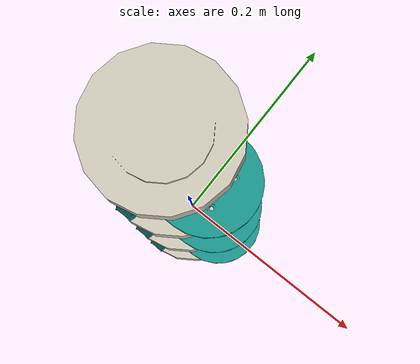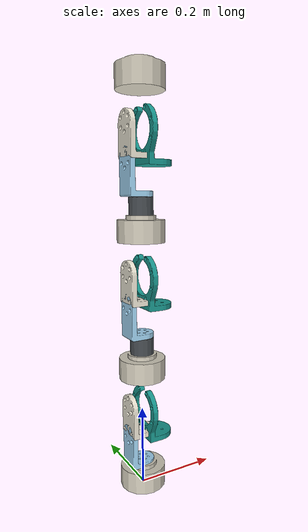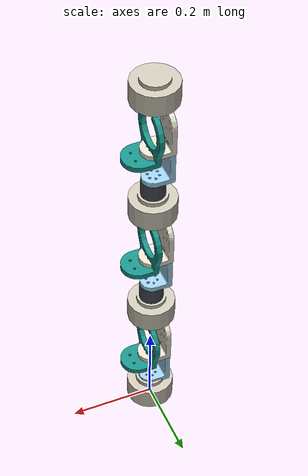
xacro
<?xml version="1.0"?>
<robot xmlns:xacro="http://www.ros.org/wiki/xacro" name="simple_assembly">

    <!-- Import simple_assembly urdf file -->
    <xacro:include filename="$(find simple_assembly)/urdf/simple_assembly.urdf" />

    <!-- Import control_xacro -->
    <xacro:include filename="simple_assembly.ros2_control.xacro" />

    <xacro:arg name="calibrate_on_start" default="false"/>
    <xacro:arg name="zero_offsets_file" default="/home/terralabscove/.ros/damiao_zero_offsets.yaml"/>

    <xacro:simple_assembly_ros2_control
        name="DamiaoArm"
        calibrate_on_start="$(arg calibrate_on_start)"
        zero_offsets_file="$(arg zero_offsets_file)"/>

</robot>

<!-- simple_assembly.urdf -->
<!--URDF generated by ONSHAPE BY PTC INC, 1.213-->
<robot name="simple_assembly">
    <link name="part_1">
        <inertial>
            <mass value="0.392289" />
            <origin xyz="-7.19431e-18 2.31112e-33 0.02825" rpy="0 -0 0" />
            <inertia ixx="0.000184016" ixy="0" ixz="0" iyy="0.000184016" iyz="0" izz="0.000159318" />
        </inertial>
        <visual>
            <origin xyz="-5.31105e-18 -1.74512e-18 0" rpy="0 -0 0" />
            <geometry>
                <mesh filename="package://simple_assembly/meshes/Part 1.stl" scale="1 1 1" />
            </geometry>
            <material name="0.800000_0.776471_0.713725_0.000000_0.000000">
                <texture />
                <color rgba="0.8 0.776471 0.713726 1" />
            </material>
        </visual>
    </link>
    <link name="part_1_1">
        <inertial>
            <mass value="0.347331" />
            <origin xyz="0.020796 1.20964e-08 -0.0428943" rpy="0 -0 0" />
            <inertia ixx="0.000768882" ixy="-1.68717e-10" ixz="0.000128098" iyy="0.00060734" iyz="8.33311e-11" izz="0.000443472" />
        </inertial>
        <visual>
            <origin xyz="1.47451e-17 5.86445e-18 -0.06225" rpy="0 -0 0" />
            <geometry>
                <mesh filename="package://simple_assembly/meshes/Part 1_1.stl" scale="1 1 1" />
            </geometry>
            <material name="0.094118_0.580392_0.545098_0.000000_0.000000">
                <texture />
                <color rgba="0.0941176 0.580392 0.545098 1" />
            </material>
        </visual>
    </link>
    <link name="part_1_10">
        <inertial>
            <mass value="0.347331" />
            <origin xyz="0.020796 1.20964e-08 -0.0428943" rpy="0 -0 0" />
            <inertia ixx="0.000768882" ixy="-1.68717e-10" ixz="0.000128098" iyy="0.00060734" iyz="8.33311e-11" izz="0.000443472" />
        </inertial>
        <visual>
            <origin xyz="1.47451e-17 5.86445e-18 -0.06225" rpy="0 -0 0" />
            <geometry>
                <mesh filename="package://simple_assembly/meshes/Part 1_1.stl" scale="1 1 1" />
            </geometry>
            <material name="0.094118_0.580392_0.545098_0.000000_0.000000">
                <texture />
                <color rgba="0.0941176 0.580392 0.545098 1" />
            </material>
        </visual>
    </link>
    <link name="part_1_11">
        <inertial>
            <mass value="0.284011" />
            <origin xyz="-0.0234111 -2.25131e-10 0.0361492" rpy="0 -0 0" />
            <inertia ixx="0.000368023" ixy="4.4845e-12" ixz="8.61899e-05" iyy="0.000382149" iyz="-7.95148e-12" izz="0.000153368" />
        </inertial>
        <visual>
            <origin xyz="0 0 -0.0002" rpy="0 -0 0" />
            <geometry>
                <mesh filename="package://simple_assembly/meshes/Part 1_3.stl" scale="1 1 1" />
            </geometry>
            <material name="0.615686_0.811765_0.929412_0.000000_0.000000">
                <texture />
                <color rgba="0.615686 0.811765 0.929412 1" />
            </material>
        </visual>
    </link>
    <link name="part_1_12">
        <inertial>
            <mass value="0.392289" />
            <origin xyz="-1.88325e-18 2.31112e-33 0.02825" rpy="0 -0 0" />
            <inertia ixx="0.000184016" ixy="0" ixz="0" iyy="0.000184016" iyz="0" izz="0.000159318" />
        </inertial>
        <visual>
            <origin xyz="0 -1.74512e-18 0" rpy="0 -0 0" />
            <geometry>
                <mesh filename="package://simple_assembly/meshes/Part 1.stl" scale="1 1 1" />
            </geometry>
            <material name="0.800000_0.776471_0.713725_0.000000_0.000000">
                <texture />
                <color rgba="0.8 0.776471 0.713726 1" />
            </material>
        </visual>
    </link>
    <link name="part_1_13">
        <inertial>
            <mass value="0.284011" />
            <origin xyz="-0.0234111 -2.25131e-10 0.0361492" rpy="0 -0 0" />
            <inertia ixx="0.000368023" ixy="4.4845e-12" ixz="8.61899e-05" iyy="0.000382149" iyz="-7.95148e-12" izz="0.000153368" />
        </inertial>
        <visual>
            <origin xyz="0 0 -0.0002" rpy="0 -0 0" />
            <geometry>
                <mesh filename="package://simple_assembly/meshes/Part 1_3.stl" scale="1 1 1" />
            </geometry>
            <material name="0.615686_0.811765_0.929412_0.000000_0.000000">
                <texture />
                <color rgba="0.615686 0.811765 0.929412 1" />
            </material>
        </visual>
    </link>
    <link name="part_1_14">
        <inertial>
            <mass value="0.392289" />
            <origin xyz="-1.88325e-18 2.31112e-33 0.02825" rpy="0 -0 0" />
            <inertia ixx="0.000184016" ixy="0" ixz="0" iyy="0.000184016" iyz="0" izz="0.000159318" />
        </inertial>
        <visual>
            <origin xyz="0 -1.74512e-18 0" rpy="0 -0 0" />
            <geometry>
                <mesh filename="package://simple_assembly/meshes/Part 1.stl" scale="1 1 1" />
            </geometry>
            <material name="0.800000_0.776471_0.713725_0.000000_0.000000">
                <texture />
                <color rgba="0.8 0.776471 0.713726 1" />
            </material>
        </visual>
    </link>
    <link name="part_1_2">
        <inertial>
            <mass value="1.49866" />
            <origin xyz="-9.38573e-18 -8.98462e-20 0.028166" rpy="0 -0 0" />
            <inertia ixx="0.0015335" ixy="0" ixz="0" iyy="0.0015335" iyz="0" izz="0.00224985" />
        </inertial>
        <visual>
            <origin xyz="-1.10049e-17 -3.42901e-18 0" rpy="0 -0 0" />
            <geometry>
                <mesh filename="package://simple_assembly/meshes/Part 1_2.stl" scale="1 1 1" />
            </geometry>
            <material name="0.901961_0.878431_0.811765_0.000000_0.000000">
                <texture />
                <color rgba="0.901961 0.878431 0.811765 1" />
            </material>
        </visual>
    </link>
    <link name="part_1_3">
        <inertial>
            <mass value="1.49866" />
            <origin xyz="1.61912e-18 -8.98462e-20 0.028166" rpy="0 -0 0" />
            <inertia ixx="0.0015335" ixy="0" ixz="0" iyy="0.0015335" iyz="0" izz="0.00224985" />
        </inertial>
        <visual>
            <origin xyz="0 -3.42901e-18 0" rpy="0 -0 0" />
            <geometry>
                <mesh filename="package://simple_assembly/meshes/Part 1_2.stl" scale="1 1 1" />
            </geometry>
            <material name="0.901961_0.878431_0.811765_0.000000_0.000000">
                <texture />
                <color rgba="0.901961 0.878431 0.811765 1" />
            </material>
        </visual>
    </link>
    <link name="part_1_4">
        <inertial>
            <mass value="0.284011" />
            <origin xyz="-0.0234111 -2.25131e-10 0.0361492" rpy="0 -0 0" />
            <inertia ixx="0.000368023" ixy="4.4845e-12" ixz="8.61899e-05" iyy="0.000382149" iyz="-7.95148e-12" izz="0.000153368" />
        </inertial>
        <visual>
            <origin xyz="0 0 -0.0002" rpy="0 -0 0" />
            <geometry>
                <mesh filename="package://simple_assembly/meshes/Part 1_3.stl" scale="1 1 1" />
            </geometry>
            <material name="0.615686_0.811765_0.929412_0.000000_0.000000">
                <texture />
                <color rgba="0.615686 0.811765 0.929412 1" />
            </material>
        </visual>
    </link>
    <link name="part_1_5">
        <inertial>
            <mass value="0.319085" />
            <origin xyz="-3.6505e-08 -1.40559e-08 0.0234998" rpy="0 -0 0" />
            <inertia ixx="0.000124216" ixy="-2.09268e-14" ixz="-2.75013e-13" iyy="0.000124216" iyz="1.7298e-13" izz="0.000131075" />
        </inertial>
        <visual>
            <origin xyz="-3.67805e-08 -1.40564e-08 0" rpy="0 -0 0" />
            <geometry>
                <mesh filename="package://simple_assembly/meshes/Part 1_4.stl" scale="1 1 1" />
            </geometry>
            <material name="0.262745_0.282353_0.301961_0.000000_0.000000">
                <texture />
                <color rgba="0.262745 0.282353 0.301961 1" />
            </material>
        </visual>
    </link>
    <link name="part_1_6">
        <inertial>
            <mass value="0.347331" />
            <origin xyz="0.020796 1.20964e-08 -0.0428943" rpy="0 -0 0" />
            <inertia ixx="0.000768882" ixy="-1.68717e-10" ixz="0.000128098" iyy="0.00060734" iyz="8.33311e-11" izz="0.000443472" />
        </inertial>
        <visual>
            <origin xyz="1.47451e-17 5.86445e-18 -0.06225" rpy="0 -0 0" />
            <geometry>
                <mesh filename="package://simple_assembly/meshes/Part 1_1.stl" scale="1 1 1" />
            </geometry>
            <material name="0.094118_0.580392_0.545098_0.000000_0.000000">
                <texture />
                <color rgba="0.0941176 0.580392 0.545098 1" />
            </material>
        </visual>
    </link>
    <link name="part_1_7">
        <inertial>
            <mass value="1.49866" />
            <origin xyz="1.61912e-18 -8.98462e-20 0.028166" rpy="0 -0 0" />
            <inertia ixx="0.0015335" ixy="0" ixz="0" iyy="0.0015335" iyz="0" izz="0.00224985" />
        </inertial>
        <visual>
            <origin xyz="0 -3.42901e-18 0" rpy="0 -0 0" />
            <geometry>
                <mesh filename="package://simple_assembly/meshes/Part 1_2.stl" scale="1 1 1" />
            </geometry>
            <material name="0.901961_0.878431_0.811765_0.000000_0.000000">
                <texture />
                <color rgba="0.901961 0.878431 0.811765 1" />
            </material>
        </visual>
    </link>
    <link name="part_1_8">
        <inertial>
            <mass value="0.392289" />
            <origin xyz="-1.88325e-18 2.31112e-33 0.02825" rpy="0 -0 0" />
            <inertia ixx="0.000184016" ixy="0" ixz="0" iyy="0.000184016" iyz="0" izz="0.000159318" />
        </inertial>
        <visual>
            <origin xyz="0 -1.74512e-18 0" rpy="0 -0 0" />
            <geometry>
                <mesh filename="package://simple_assembly/meshes/Part 1.stl" scale="1 1 1" />
            </geometry>
            <material name="0.800000_0.776471_0.713725_0.000000_0.000000">
                <texture />
                <color rgba="0.8 0.776471 0.713726 1" />
            </material>
        </visual>
    </link>
    <link name="part_1_9">
        <inertial>
            <mass value="0.319085" />
            <origin xyz="-3.6505e-08 -1.40559e-08 0.0234998" rpy="0 -0 0" />
            <inertia ixx="0.000124216" ixy="-2.09268e-14" ixz="-2.75013e-13" iyy="0.000124216" iyz="1.7298e-13" izz="0.000131075" />
        </inertial>
        <visual>
            <origin xyz="-3.67805e-08 -1.40564e-08 0" rpy="0 -0 0" />
            <geometry>
                <mesh filename="package://simple_assembly/meshes/Part 1_4.stl" scale="1 1 1" />
            </geometry>
            <material name="0.262745_0.282353_0.301961_0.000000_0.000000">
                <texture />
                <color rgba="0.262745 0.282353 0.301961 1" />
            </material>
        </visual>
    </link>
    <link name="root" />
    <link name="wrist_link" />
    <joint name="fastened_1_0" type="fixed">
        <origin xyz="0 0 0" rpy="0 0 0" />
        <axis xyz="0 0 -1" />
        <parent link="root" />
        <child link="part_1_12" />
    </joint>
    <joint name="fastened_2_0" type="fixed">
        <origin xyz="0 0 0.062" rpy="0 0 0" />
        <axis xyz="-1 0 0" />
        <parent link="part_1_7" />
        <child link="part_1_6" />
    </joint>
    <!-- combined xyz length: sqrt(0.0352^2 + 0.0750^2) ≈ 0.083 -->
    <joint name="fastened_3_0" type="fixed">
        <origin xyz="0 0 0.083" rpy="0 0 0" />
        <axis xyz="0 0 -1" />
        <parent link="part_1_6" />
        <child link="part_1_14" />
    </joint>
    <joint name="fastened_4_0" type="fixed">
        <origin xyz="0 0 0.047" rpy="0 0 0" />
        <axis xyz="0 0 -1" />
        <parent link="part_1_9" />
        <child link="part_1_11" />
    </joint>
    <joint name="fastened_5_0" type="fixed">
        <origin xyz="0 0 0.062" rpy="0 0 0" />
        <axis xyz="-1 0 0" />
        <parent link="part_1_2" />
        <child link="part_1_1" />
    </joint>
    <joint name="fastened_6_0" type="fixed">
        <origin xyz="0 0 0.083" rpy="0 0 0" />
        <axis xyz="0 0 -1" />
        <parent link="part_1_1" />
        <child link="part_1" />
    </joint>
    <joint name="fastened_7_0" type="fixed">
        <origin xyz="0 0 0.047" rpy="0 0 0" />
        <axis xyz="0 0 -1" />
        <parent link="part_1_5" />
        <child link="part_1_4" />
    </joint>
    <joint name="fastened_8_0" type="fixed">
        <origin xyz="0 0 0.062" rpy="0 0 0" />
        <axis xyz="-1 0 0" />
        <parent link="part_1_3" />
        <child link="part_1_10" />
    </joint>
    <joint name="fastened_9_0" type="fixed">
        <origin xyz="0 0 0.083" rpy="0 0 0" />
        <axis xyz="0 0 -1" />
        <parent link="part_1_10" />
        <child link="part_1_8" />
    </joint>
    <!-- revolute_1_0: Z-type (DM10010), base joint — +/-360 deg from home -->
    <joint name="revolute_1_0" type="revolute">
        <origin xyz="0 0 0.0565" rpy="0 0 0" />
        <axis xyz="0 0 1" />
        <parent link="part_1_12" />
        <child link="part_1_13" />
        <limit lower="-6.28318" upper="6.28318" effort="150.0" velocity="15.71" />
    </joint>
    <!-- revolute_2_0: first Y-type (DM4340) from bottom — +/-90 deg from home -->
    <joint name="revolute_2_0" type="revolute">
        <origin xyz="0 0 0.0815" rpy="0 0 0" />
        <axis xyz="0 1 0" />
        <parent link="part_1_13" />
        <child link="part_1_7" />
        <limit lower="-1.5708" upper="1.5708" effort="27.0" velocity="5.45" />
    </joint>
    <!-- revolute_3_0: Z-type (DM10010) — +/-360 deg from home -->
    <joint name="revolute_3_0" type="revolute">
        <origin xyz="0 0 0.0565" rpy="0 0 0" />
        <axis xyz="0 0 1" />
        <parent link="part_1_14" />
        <child link="part_1_9" />
        <limit lower="-6.28318" upper="6.28318" effort="150.0" velocity="15.71" />
    </joint>
    <!-- revolute_4_0: Y-type (DM4340) — +/-110 deg from home -->
    <joint name="revolute_4_0" type="revolute">
        <origin xyz="0 0 0.0815" rpy="0 0 0" />
        <axis xyz="0 1 0" />
        <parent link="part_1_11" />
        <child link="part_1_2" />
        <limit lower="-1.91986" upper="1.91986" effort="27.0" velocity="5.45" />
    </joint>
    <!-- revolute_5_0: Z-type (DM10010) — +/-360 deg from home -->
    <joint name="revolute_5_0" type="revolute">
        <origin xyz="0 0 0.0565" rpy="0 0 0" />
        <axis xyz="0 0 1" />
        <parent link="part_1" />
        <child link="part_1_5" />
        <limit lower="-6.28318" upper="6.28318" effort="150.0" velocity="15.71" />
    </joint>
    <!-- revolute_6_0: Y-type (DM4340) — +/-110 deg from home -->
    <joint name="revolute_6_0" type="revolute">
        <origin xyz="0 0 0.0815" rpy="0 0 0" />
        <axis xyz="0 1 0" />
        <parent link="part_1_4" />
        <child link="part_1_3" />
        <limit lower="-1.91986" upper="1.91986" effort="27.0" velocity="5.45" />
    </joint>
    <!-- revolute_7_0: Z-type (DM10010), wrist/tip — +/-360 deg from home -->
    <joint name="revolute_7_0" type="revolute">
        <origin xyz="0 0 0" rpy="0 0 1.5708" />
        <axis xyz="0 0 1" />
        <parent link="part_1_8" />
        <child link="wrist_link" />
        <limit lower="-6.28318" upper="6.28318" effort="150.0" velocity="15.71" />
    </joint>
</robot>
